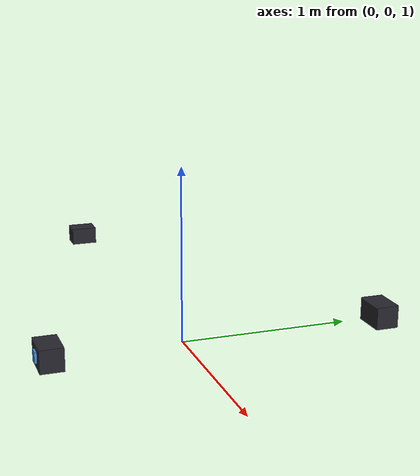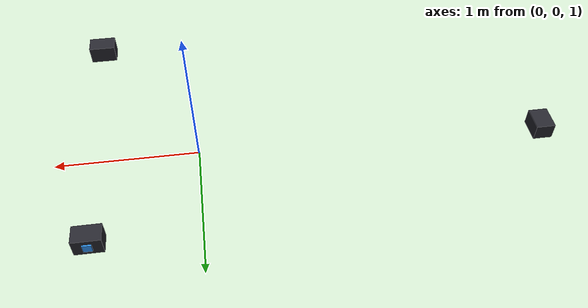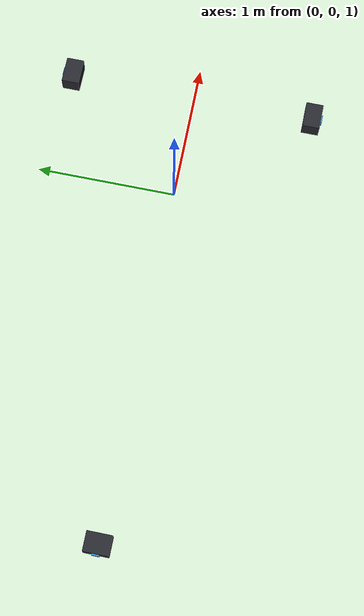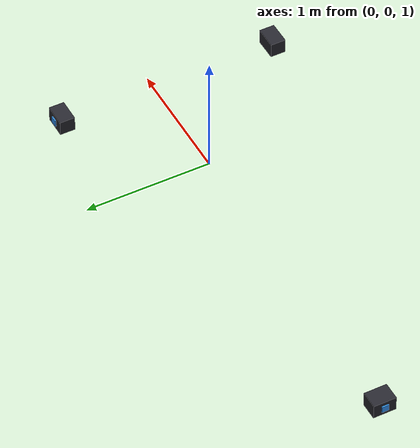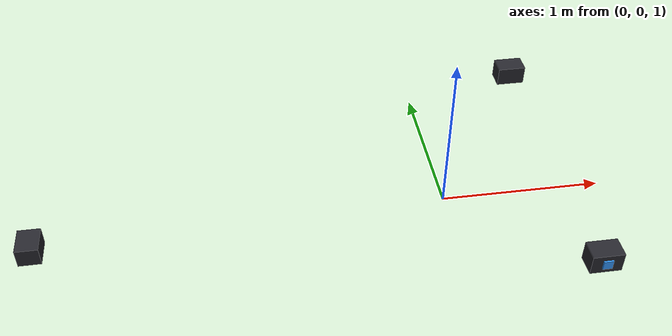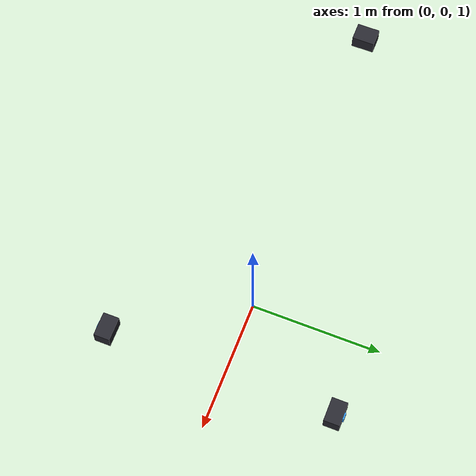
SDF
<?xml version="1.0"?>
<sdf version="1.9">
  <!-- Identity link pose; camera poses relative to vehicle: x forward, y left, z up. -->
  <model name="surround_camera_rig">
    <static>true</static>
    <link name="surround_camera_mount">
      <!-- Side housings touch the windows; optical origins lie outside the housings. -->
      <visual name="left_housing">
        <pose>0.65 0.87 1.30 0 0 0</pose>
        <geometry><box><size>0.18 0.12 0.12</size></box></geometry>
        <material><ambient>0.15 0.15 0.18 1</ambient><diffuse>0.15 0.15 0.18 1</diffuse></material>
      </visual>
      <visual name="left_lens">
        <pose>0.65 0.93 1.30 0 0 0</pose>
        <geometry><box><size>0.055 0.02 0.055</size></box></geometry>
        <material><ambient>0.2 0.6 1 1</ambient><diffuse>0.2 0.6 1 1</diffuse></material>
      </visual>
      <visual name="right_housing">
        <pose>0.65 -0.87 1.30 0 0 0</pose>
        <geometry><box><size>0.18 0.12 0.12</size></box></geometry>
        <material><ambient>0.15 0.15 0.18 1</ambient><diffuse>0.15 0.15 0.18 1</diffuse></material>
      </visual>
      <visual name="right_lens">
        <pose>0.65 -0.93 1.30 0 0 0</pose>
        <geometry><box><size>0.055 0.02 0.055</size></box></geometry>
        <material><ambient>0.2 0.6 1 1</ambient><diffuse>0.2 0.6 1 1</diffuse></material>
      </visual>
      <visual name="rear_housing">
        <pose>-2.53 0 0.95 0 0 0</pose>
        <geometry><box><size>0.14 0.18 0.12</size></box></geometry>
        <material><ambient>0.15 0.15 0.18 1</ambient><diffuse>0.15 0.15 0.18 1</diffuse></material>
      </visual>
      <visual name="rear_lens">
        <pose>-2.60 0 0.95 0 0 0</pose>
        <geometry><box><size>0.02 0.055 0.055</size></box></geometry>
        <material><ambient>0.2 0.6 1 1</ambient><diffuse>0.2 0.6 1 1</diffuse></material>
      </visual>
      <sensor name="left" type="camera">
        <pose>0.65 0.95 1.30 0 0.2617993878 2.0507618711</pose>
        <always_on>true</always_on><update_rate>15</update_rate>
        <camera><horizontal_fov>2.3561944902</horizontal_fov><image><width>640</width><height>360</height><format>R8G8B8</format></image><clip><near>0.05</near><far>150</far></clip></camera>
      </sensor>
      <sensor name="right" type="camera">
        <pose>0.65 -0.95 1.30 0 0.2617993878 -2.0507618711</pose>
        <always_on>true</always_on><update_rate>15</update_rate>
        <camera><horizontal_fov>2.3561944902</horizontal_fov><image><width>640</width><height>360</height><format>R8G8B8</format></image><clip><near>0.05</near><far>150</far></clip></camera>
      </sensor>
      <sensor name="rear" type="camera">
        <pose>-2.62 0 0.95 0 0 3.1415926536</pose>
        <always_on>true</always_on><update_rate>15</update_rate>
        <camera><horizontal_fov>1.7453292520</horizontal_fov><image><width>640</width><height>360</height><format>R8G8B8</format></image><clip><near>0.05</near><far>150</far></clip></camera>
      </sensor>
    </link>
  </model>
</sdf>
